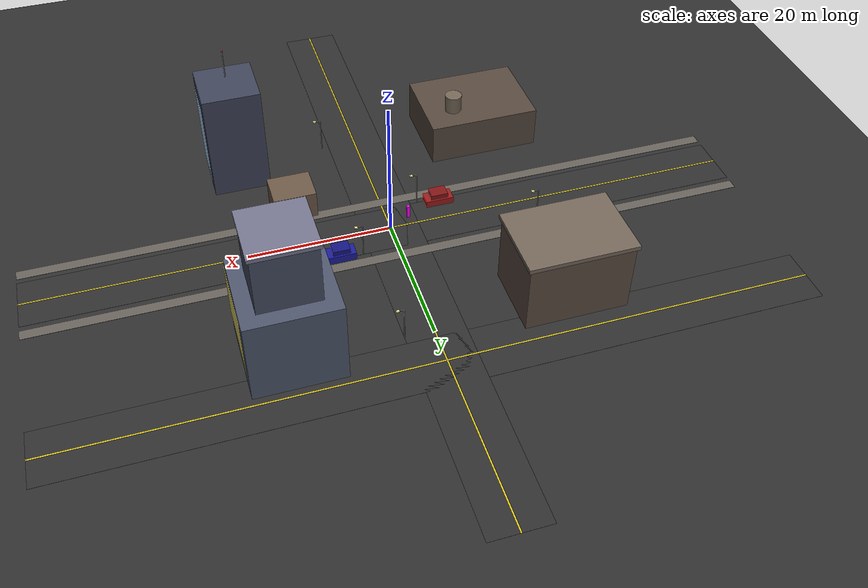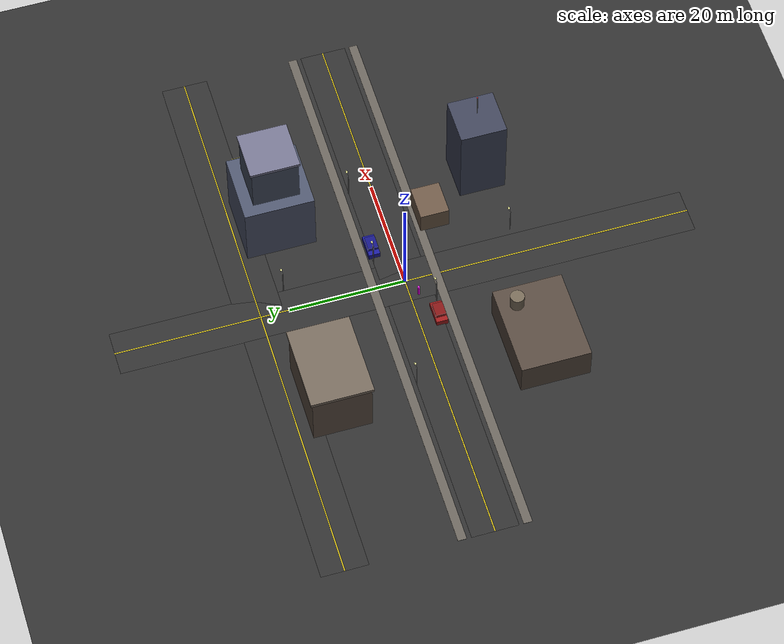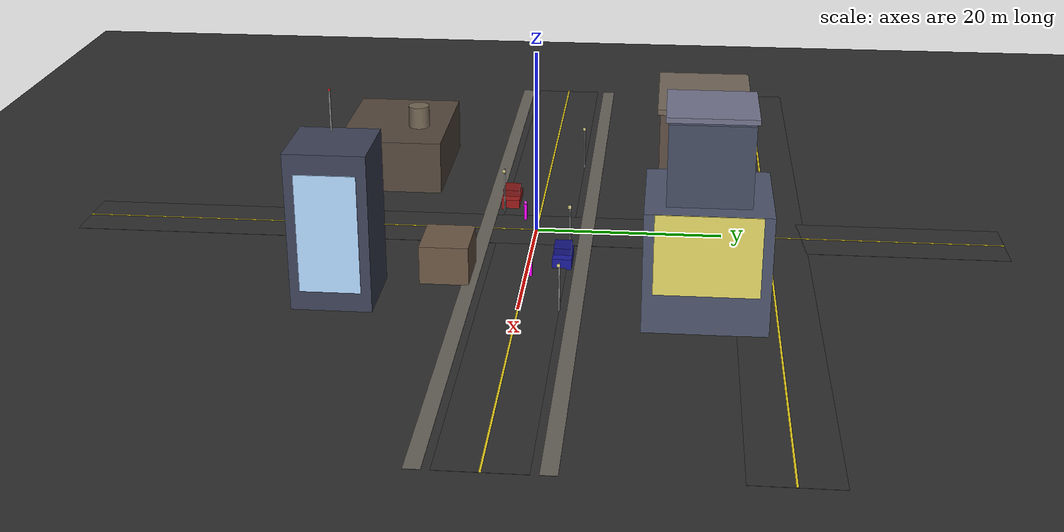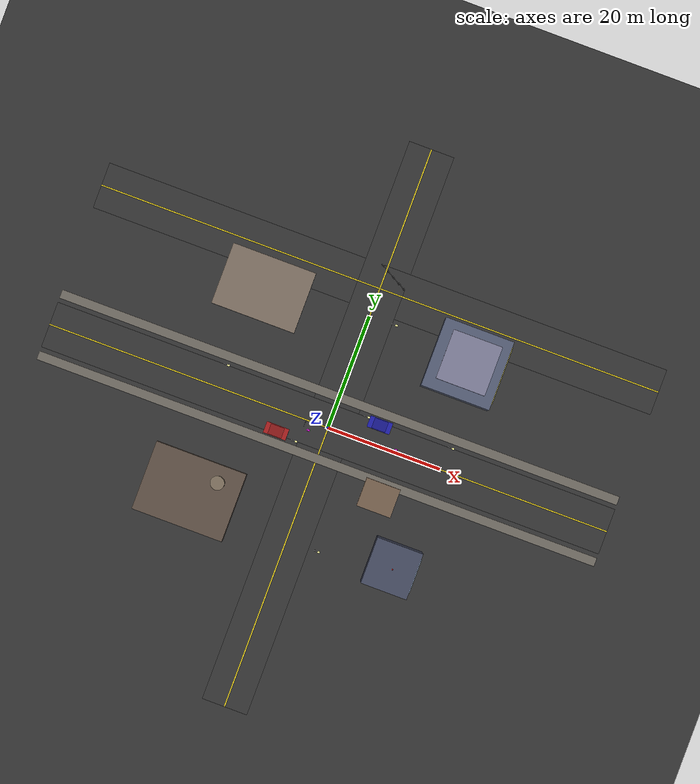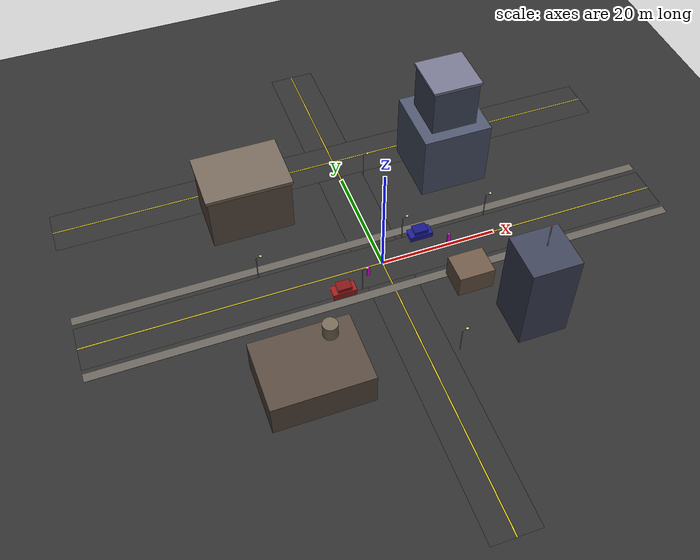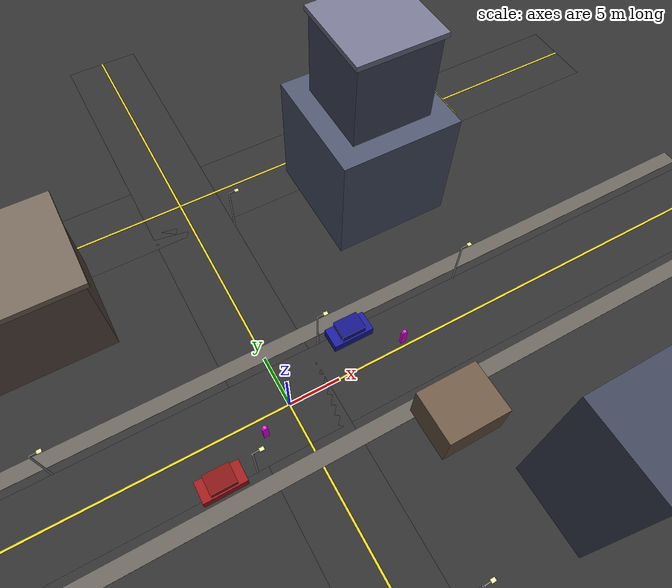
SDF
<?xml version="1.0" ?>
<sdf version="1.9">
  <world name="night_patrol_city">

    <physics name="default_physics" default="true" type="ode">
      <max_step_size>0.001</max_step_size>
      <real_time_factor>1.0</real_time_factor>
    </physics>

    <plugin filename="gz-sim-physics-system" name="gz::sim::systems::Physics"/>
    <plugin filename="gz-sim-scene-broadcaster-system" name="gz::sim::systems::SceneBroadcaster"/>
    <plugin filename="gz-sim-user-commands-system" name="gz::sim::systems::UserCommands"/>
    <plugin filename="gz-sim-sensors-system" name="gz::sim::systems::Sensors">
      <render_engine>ogre2</render_engine>
    </plugin>

    <scene>
      <ambient>0.03 0.03 0.07 1</ambient>
      <background>0.0 0.0 0.05 1</background>
      <shadows>true</shadows>
    </scene>

    <!-- ==================== WORLD-LEVEL LIGHTS ==================== -->

    <!-- Road 1 (horizontal) streetlights -->
    <light name="lamp_1" type="point">
      <pose>5 4 5.2 0 0 0</pose>
      <diffuse>1 0.88 0.5 1</diffuse>
      <specular>0.3 0.3 0.2 1</specular>
      <attenuation>
        <range>16</range>
        <constant>0.2</constant>
        <linear>0.04</linear>
        <quadratic>0.008</quadratic>
      </attenuation>
      <cast_shadows>false</cast_shadows>
    </light>

    <light name="lamp_2" type="point">
      <pose>-5 -4 5.2 0 0 0</pose>
      <diffuse>1 0.88 0.5 1</diffuse>
      <specular>0.3 0.3 0.2 1</specular>
      <attenuation>
        <range>16</range>
        <constant>0.2</constant>
        <linear>0.04</linear>
        <quadratic>0.008</quadratic>
      </attenuation>
      <cast_shadows>false</cast_shadows>
    </light>

    <!-- Road 2 (vertical) streetlights -->
    <light name="lamp_3" type="point">
      <pose>5 -20 5.2 0 0 0</pose>
      <diffuse>1 0.88 0.5 1</diffuse>
      <specular>0.3 0.3 0.2 1</specular>
      <attenuation>
        <range>16</range>
        <constant>0.2</constant>
        <linear>0.04</linear>
        <quadratic>0.008</quadratic>
      </attenuation>
      <cast_shadows>false</cast_shadows>
    </light>

    <!-- Road 3 (diagonal/second horizontal) streetlights -->
    <light name="lamp_4" type="point">
      <pose>-20 4 5.2 0 0 0</pose>
      <diffuse>1 0.88 0.5 1</diffuse>
      <specular>0.3 0.3 0.2 1</specular>
      <attenuation>
        <range>16</range>
        <constant>0.2</constant>
        <linear>0.04</linear>
        <quadratic>0.008</quadratic>
      </attenuation>
      <cast_shadows>false</cast_shadows>
    </light>

    <light name="lamp_5" type="point">
      <pose>20 4 5.2 0 0 0</pose>
      <diffuse>1 0.88 0.5 1</diffuse>
      <specular>0.3 0.3 0.2 1</specular>
      <attenuation>
        <range>16</range>
        <constant>0.2</constant>
        <linear>0.04</linear>
        <quadratic>0.008</quadratic>
      </attenuation>
      <cast_shadows>false</cast_shadows>
    </light>

    <light name="lamp_6" type="point">
      <pose>4 20 5.2 0 0 0</pose>
      <diffuse>1 0.88 0.5 1</diffuse>
      <specular>0.3 0.3 0.2 1</specular>
      <attenuation>
        <range>16</range>
        <constant>0.2</constant>
        <linear>0.04</linear>
        <quadratic>0.008</quadratic>
      </attenuation>
      <cast_shadows>false</cast_shadows>
    </light>

    <!-- ==================== GROUND ==================== -->
    <model name="ground_plane">
      <static>true</static>
      <link name="link">
        <collision name="collision">
          <geometry>
            <plane>
              <normal>0 0 1</normal>
              <size>200 200</size>
            </plane>
          </geometry>
        </collision>
        <visual name="visual">
          <geometry>
            <plane>
              <normal>0 0 1</normal>
              <size>200 200</size>
            </plane>
          </geometry>
          <material>
            <ambient>0.15 0.15 0.15 1</ambient>
            <diffuse>0.18 0.18 0.18 1</diffuse>
          </material>
        </visual>
      </link>
    </model>

    <!-- ==================== ROADS ==================== -->

    <!-- Road 1: Main horizontal -->
    <model name="road_h1">
      <static>true</static>
      <pose>0 0 0.01 0 0 0</pose>
      <link name="link">
        <visual name="visual">
          <geometry>
            <box><size>100 8 0.02</size></box>
          </geometry>
          <material>
            <ambient>0.12 0.12 0.12 1</ambient>
            <diffuse>0.18 0.18 0.18 1</diffuse>
          </material>
        </visual>
        <collision name="collision">
          <geometry>
            <box><size>100 8 0.02</size></box>
          </geometry>
        </collision>
      </link>
    </model>

    <!-- Road 1 centre line markings -->
    <model name="road_h1_line">
      <static>true</static>
      <pose>0 0 0.02 0 0 0</pose>
      <link name="link">
        <visual name="visual">
          <geometry>
            <box><size>100 0.2 0.01</size></box>
          </geometry>
          <material>
            <ambient>0.9 0.8 0.1 1</ambient>
            <diffuse>0.9 0.8 0.1 1</diffuse>
          </material>
        </visual>
      </link>
    </model>

    <!-- Road 2: Main vertical -->
    <model name="road_v1">
      <static>true</static>
      <pose>0 0 0.01 0 0 1.5708</pose>
      <link name="link">
        <visual name="visual">
          <geometry>
            <box><size>100 8 0.02</size></box>
          </geometry>
          <material>
            <ambient>0.12 0.12 0.12 1</ambient>
            <diffuse>0.18 0.18 0.18 1</diffuse>
          </material>
        </visual>
        <collision name="collision">
          <geometry>
            <box><size>100 8 0.02</size></box>
          </geometry>
        </collision>
      </link>
    </model>

    <!-- Road 2 centre line -->
    <model name="road_v1_line">
      <static>true</static>
      <pose>0 0 0.02 0 0 1.5708</pose>
      <link name="link">
        <visual name="visual">
          <geometry>
            <box><size>100 0.2 0.01</size></box>
          </geometry>
          <material>
            <ambient>0.9 0.8 0.1 1</ambient>
            <diffuse>0.9 0.8 0.1 1</diffuse>
          </material>
        </visual>
      </link>
    </model>

    <!-- Road 3: Second horizontal road above -->
    <model name="road_h2">
      <static>true</static>
      <pose>0 25 0.01 0 0 0</pose>
      <link name="link">
        <visual name="visual">
          <geometry>
            <box><size>100 8 0.02</size></box>
          </geometry>
          <material>
            <ambient>0.12 0.12 0.12 1</ambient>
            <diffuse>0.18 0.18 0.18 1</diffuse>
          </material>
        </visual>
        <collision name="collision">
          <geometry>
            <box><size>100 8 0.02</size></box>
          </geometry>
        </collision>
      </link>
    </model>

    <!-- Road 3 centre line -->
    <model name="road_h2_line">
      <static>true</static>
      <pose>0 25 0.02 0 0 0</pose>
      <link name="link">
        <visual name="visual">
          <geometry>
            <box><size>100 0.2 0.01</size></box>
          </geometry>
          <material>
            <ambient>0.9 0.8 0.1 1</ambient>
            <diffuse>0.9 0.8 0.1 1</diffuse>
          </material>
        </visual>
      </link>
    </model>

    <!-- Sidewalk strips alongside road_h1 -->
    <model name="sidewalk_h1_north">
      <static>true</static>
      <pose>0 5.5 0.015 0 0 0</pose>
      <link name="link">
        <visual name="visual">
          <geometry>
            <box><size>100 1.5 0.03</size></box>
          </geometry>
          <material>
            <ambient>0.35 0.33 0.30 1</ambient>
            <diffuse>0.40 0.38 0.35 1</diffuse>
          </material>
        </visual>
      </link>
    </model>

    <model name="sidewalk_h1_south">
      <static>true</static>
      <pose>0 -5.5 0.015 0 0 0</pose>
      <link name="link">
        <visual name="visual">
          <geometry>
            <box><size>100 1.5 0.03</size></box>
          </geometry>
          <material>
            <ambient>0.35 0.33 0.30 1</ambient>
            <diffuse>0.40 0.38 0.35 1</diffuse>
          </material>
        </visual>
      </link>
    </model>

    <!-- ==================== BUILDINGS ==================== -->

    <!-- Building 1: Tall office tower NE -->
    <model name="building_1_base">
      <static>true</static>
      <pose>18 18 6 0 0 0</pose>
      <link name="link">
        <visual name="visual">
          <geometry>
            <box><size>12 12 12</size></box>
          </geometry>
          <material>
            <ambient>0.25 0.28 0.35 1</ambient>
            <diffuse>0.30 0.33 0.42 1</diffuse>
            <specular>0.15 0.15 0.2 1</specular>
          </material>
        </visual>
        <collision name="collision">
          <geometry>
            <box><size>12 12 12</size></box>
          </geometry>
        </collision>
      </link>
    </model>

    <!-- Building 1 upper section (setback) -->
    <model name="building_1_upper">
      <static>true</static>
      <pose>18 18 16 0 0 0</pose>
      <link name="link">
        <visual name="visual">
          <geometry>
            <box><size>8 8 8</size></box>
          </geometry>
          <material>
            <ambient>0.22 0.25 0.32 1</ambient>
            <diffuse>0.27 0.30 0.38 1</diffuse>
          </material>
        </visual>
        <collision name="collision">
          <geometry>
            <box><size>8 8 8</size></box>
          </geometry>
        </collision>
      </link>
    </model>

    <!-- Building 1 roof accent -->
    <model name="building_1_roof">
      <static>true</static>
      <pose>18 18 20.5 0 0 0</pose>
      <link name="link">
        <visual name="visual">
          <geometry>
            <box><size>8.5 8.5 0.5</size></box>
          </geometry>
          <material>
            <ambient>0.4 0.4 0.5 1</ambient>
            <diffuse>0.45 0.45 0.55 1</diffuse>
          </material>
        </visual>
      </link>
    </model>

    <!-- Building 1 windows (emissive strip, warm yellow) -->
    <model name="building_1_windows">
      <static>true</static>
      <pose>24.1 18 8 0 0 0</pose>
      <link name="link">
        <visual name="visual">
          <geometry>
            <box><size>0.05 10 8</size></box>
          </geometry>
          <material>
            <ambient>0.9 0.85 0.4 1</ambient>
            <diffuse>0.9 0.85 0.4 1</diffuse>
            <emissive>0.6 0.55 0.1 1</emissive>
          </material>
        </visual>
      </link>
    </model>

    <!-- Building 2: Wide apartment block NW -->
    <model name="building_2_base">
      <static>true</static>
      <pose>-18 18 5 0 0 0</pose>
      <link name="link">
        <visual name="visual">
          <geometry>
            <box><size>14 10 10</size></box>
          </geometry>
          <material>
            <ambient>0.30 0.25 0.22 1</ambient>
            <diffuse>0.36 0.30 0.26 1</diffuse>
            <specular>0.1 0.08 0.07 1</specular>
          </material>
        </visual>
        <collision name="collision">
          <geometry>
            <box><size>14 10 10</size></box>
          </geometry>
        </collision>
      </link>
    </model>

    <!-- Building 2 roof ledge -->
    <model name="building_2_roof">
      <static>true</static>
      <pose>-18 18 10.3 0 0 0</pose>
      <link name="link">
        <visual name="visual">
          <geometry>
            <box><size>14.6 10.6 0.6</size></box>
          </geometry>
          <material>
            <ambient>0.4 0.35 0.3 1</ambient>
            <diffuse>0.45 0.40 0.35 1</diffuse>
          </material>
        </visual>
      </link>
    </model>

    <!-- Building 2 windows -->
    <model name="building_2_windows">
      <static>true</static>
      <pose>-11.1 18 5 0 0 0</pose>
      <link name="link">
        <visual name="visual">
          <geometry>
            <box><size>0.05 8 6</size></box>
          </geometry>
          <material>
            <ambient>0.9 0.85 0.4 1</ambient>
            <diffuse>0.9 0.85 0.4 1</diffuse>
            <emissive>0.5 0.45 0.05 1</emissive>
          </material>
        </visual>
      </link>
    </model>

    <!-- Building 3: Narrow tower SE -->
    <model name="building_3_base">
      <static>true</static>
      <pose>18 -18 8 0 0 0</pose>
      <link name="link">
        <visual name="visual">
          <geometry>
            <box><size>8 8 16</size></box>
          </geometry>
          <material>
            <ambient>0.20 0.22 0.28 1</ambient>
            <diffuse>0.24 0.26 0.34 1</diffuse>
            <specular>0.2 0.2 0.25 1</specular>
          </material>
        </visual>
        <collision name="collision">
          <geometry>
            <box><size>8 8 16</size></box>
          </geometry>
        </collision>
      </link>
    </model>

    <!-- Building 3 antenna -->
    <model name="building_3_antenna">
      <static>true</static>
      <pose>18 -18 19 0 0 0</pose>
      <link name="link">
        <visual name="visual">
          <geometry>
            <cylinder><radius>0.08</radius><length>4</length></cylinder>
          </geometry>
          <material>
            <ambient>0.5 0.5 0.5 1</ambient>
            <diffuse>0.6 0.6 0.6 1</diffuse>
          </material>
        </visual>
      </link>
    </model>

    <!-- Building 3 antenna red blink light -->
    <model name="building_3_beacon">
      <static>true</static>
      <pose>18 -18 21.1 0 0 0</pose>
      <link name="link">
        <visual name="visual">
          <geometry>
            <sphere><radius>0.12</radius></sphere>
          </geometry>
          <material>
            <ambient>1 0.1 0.1 1</ambient>
            <diffuse>1 0.1 0.1 1</diffuse>
            <emissive>0.9 0.0 0.0 1</emissive>
          </material>
        </visual>
      </link>
    </model>

    <!-- Building 3 windows -->
    <model name="building_3_windows">
      <static>true</static>
      <pose>22.1 -18 8 0 0 0</pose>
      <link name="link">
        <visual name="visual">
          <geometry>
            <box><size>0.05 6 12</size></box>
          </geometry>
          <material>
            <ambient>0.7 0.85 1.0 1</ambient>
            <diffuse>0.7 0.85 1.0 1</diffuse>
            <emissive>0.3 0.4 0.6 1</emissive>
          </material>
        </visual>
      </link>
    </model>

    <!-- Building 4: Low warehouse SW -->
    <model name="building_4_base">
      <static>true</static>
      <pose>-18 -18 3 0 0 0</pose>
      <link name="link">
        <visual name="visual">
          <geometry>
            <box><size>16 12 6</size></box>
          </geometry>
          <material>
            <ambient>0.28 0.24 0.20 1</ambient>
            <diffuse>0.33 0.28 0.24 1</diffuse>
          </material>
        </visual>
        <collision name="collision">
          <geometry>
            <box><size>16 12 6</size></box>
          </geometry>
        </collision>
      </link>
    </model>

    <!-- Building 4 roof water tower -->
    <model name="building_4_watertower">
      <static>true</static>
      <pose>-14 -15 8 0 0 0</pose>
      <link name="link">
        <visual name="visual">
          <geometry>
            <cylinder><radius>1.2</radius><length>2.5</length></cylinder>
          </geometry>
          <material>
            <ambient>0.4 0.35 0.28 1</ambient>
            <diffuse>0.45 0.40 0.33 1</diffuse>
          </material>
        </visual>
      </link>
    </model>

    <!-- Building 5: Corner shop (small, near road) -->
    <model name="building_5">
      <static>true</static>
      <pose>12 -8 2 0 0 0</pose>
      <link name="link">
        <visual name="visual">
          <geometry>
            <box><size>6 5 4</size></box>
          </geometry>
          <material>
            <ambient>0.35 0.28 0.22 1</ambient>
            <diffuse>0.42 0.34 0.27 1</diffuse>
          </material>
        </visual>
        <collision name="collision">
          <geometry>
            <box><size>6 5 4</size></box>
          </geometry>
        </collision>
      </link>
    </model>

    <!-- Building 5 shop sign (emissive) -->
    <model name="building_5_sign">
      <static>true</static>
      <pose>12 -5.55 3.5 0 0 0</pose>
      <link name="link">
        <visual name="visual">
          <geometry>
            <box><size>4 0.05 0.6</size></box>
          </geometry>
          <material>
            <ambient>0.2 0.8 0.4 1</ambient>
            <diffuse>0.2 0.8 0.4 1</diffuse>
            <emissive>0.1 0.5 0.2 1</emissive>
          </material>
        </visual>
      </link>
    </model>

    <!-- ==================== STREETLIGHT POLES ==================== -->

    <!-- Pole 1 -->
    <model name="streetlight_1">
      <static>true</static>
      <pose>5 4 0 0 0 0</pose>
      <link name="pole">
        <pose>0 0 2.5 0 0 0</pose>
        <visual name="visual">
          <geometry>
            <cylinder><radius>0.08</radius><length>5</length></cylinder>
          </geometry>
          <material>
            <ambient>0.45 0.45 0.45 1</ambient>
            <diffuse>0.55 0.55 0.55 1</diffuse>
          </material>
        </visual>
        <collision name="collision">
          <geometry>
            <cylinder><radius>0.08</radius><length>5</length></cylinder>
          </geometry>
        </collision>
      </link>
      <link name="arm">
        <pose>0.4 0 5.1 0 0 0</pose>
        <visual name="visual">
          <geometry>
            <box><size>0.8 0.08 0.08</size></box>
          </geometry>
          <material>
            <ambient>0.45 0.45 0.45 1</ambient>
            <diffuse>0.55 0.55 0.55 1</diffuse>
          </material>
        </visual>
      </link>
      <link name="lamp_head">
        <pose>0.8 0 5.1 0 0 0</pose>
        <visual name="visual">
          <geometry>
            <box><size>0.4 0.3 0.15</size></box>
          </geometry>
          <material>
            <ambient>1 0.95 0.6 1</ambient>
            <diffuse>1 0.95 0.6 1</diffuse>
            <emissive>1 0.9 0.3 1</emissive>
          </material>
        </visual>
      </link>
    </model>

    <!-- Pole 2 -->
    <model name="streetlight_2">
      <static>true</static>
      <pose>-5 -4 0 0 0 0</pose>
      <link name="pole">
        <pose>0 0 2.5 0 0 0</pose>
        <visual name="visual">
          <geometry>
            <cylinder><radius>0.08</radius><length>5</length></cylinder>
          </geometry>
          <material>
            <ambient>0.45 0.45 0.45 1</ambient>
            <diffuse>0.55 0.55 0.55 1</diffuse>
          </material>
        </visual>
        <collision name="collision">
          <geometry>
            <cylinder><radius>0.08</radius><length>5</length></cylinder>
          </geometry>
        </collision>
      </link>
      <link name="arm">
        <pose>0.4 0 5.1 0 0 0</pose>
        <visual name="visual">
          <geometry>
            <box><size>0.8 0.08 0.08</size></box>
          </geometry>
          <material>
            <ambient>0.45 0.45 0.45 1</ambient>
            <diffuse>0.55 0.55 0.55 1</diffuse>
          </material>
        </visual>
      </link>
      <link name="lamp_head">
        <pose>0.8 0 5.1 0 0 0</pose>
        <visual name="visual">
          <geometry>
            <box><size>0.4 0.3 0.15</size></box>
          </geometry>
          <material>
            <ambient>1 0.95 0.6 1</ambient>
            <diffuse>1 0.95 0.6 1</diffuse>
            <emissive>1 0.9 0.3 1</emissive>
          </material>
        </visual>
      </link>
    </model>

    <!-- Pole 3 -->
    <model name="streetlight_3">
      <static>true</static>
      <pose>5 -20 0 0 0 0</pose>
      <link name="pole">
        <pose>0 0 2.5 0 0 0</pose>
        <visual name="visual">
          <geometry>
            <cylinder><radius>0.08</radius><length>5</length></cylinder>
          </geometry>
          <material>
            <ambient>0.45 0.45 0.45 1</ambient>
            <diffuse>0.55 0.55 0.55 1</diffuse>
          </material>
        </visual>
        <collision name="collision">
          <geometry>
            <cylinder><radius>0.08</radius><length>5</length></cylinder>
          </geometry>
        </collision>
      </link>
      <link name="arm">
        <pose>0.4 0 5.1 0 0 0</pose>
        <visual name="visual">
          <geometry>
            <box><size>0.8 0.08 0.08</size></box>
          </geometry>
          <material>
            <ambient>0.45 0.45 0.45 1</ambient>
            <diffuse>0.55 0.55 0.55 1</diffuse>
          </material>
        </visual>
      </link>
      <link name="lamp_head">
        <pose>0.8 0 5.1 0 0 0</pose>
        <visual name="visual">
          <geometry>
            <box><size>0.4 0.3 0.15</size></box>
          </geometry>
          <material>
            <ambient>1 0.95 0.6 1</ambient>
            <diffuse>1 0.95 0.6 1</diffuse>
            <emissive>1 0.9 0.3 1</emissive>
          </material>
        </visual>
      </link>
    </model>

    <!-- Pole 4 (road 3 left) -->
    <model name="streetlight_4">
      <static>true</static>
      <pose>-20 4 0 0 0 0</pose>
      <link name="pole">
        <pose>0 0 2.5 0 0 0</pose>
        <visual name="visual">
          <geometry>
            <cylinder><radius>0.08</radius><length>5</length></cylinder>
          </geometry>
          <material>
            <ambient>0.45 0.45 0.45 1</ambient>
            <diffuse>0.55 0.55 0.55 1</diffuse>
          </material>
        </visual>
        <collision name="collision">
          <geometry>
            <cylinder><radius>0.08</radius><length>5</length></cylinder>
          </geometry>
        </collision>
      </link>
      <link name="arm">
        <pose>0.4 0 5.1 0 0 0</pose>
        <visual name="visual">
          <geometry>
            <box><size>0.8 0.08 0.08</size></box>
          </geometry>
          <material>
            <ambient>0.45 0.45 0.45 1</ambient>
            <diffuse>0.55 0.55 0.55 1</diffuse>
          </material>
        </visual>
      </link>
      <link name="lamp_head">
        <pose>0.8 0 5.1 0 0 0</pose>
        <visual name="visual">
          <geometry>
            <box><size>0.4 0.3 0.15</size></box>
          </geometry>
          <material>
            <ambient>1 0.95 0.6 1</ambient>
            <diffuse>1 0.95 0.6 1</diffuse>
            <emissive>1 0.9 0.3 1</emissive>
          </material>
        </visual>
      </link>
    </model>

    <!-- Pole 5 (road 3 right) -->
    <model name="streetlight_5">
      <static>true</static>
      <pose>20 4 0 0 0 0</pose>
      <link name="pole">
        <pose>0 0 2.5 0 0 0</pose>
        <visual name="visual">
          <geometry>
            <cylinder><radius>0.08</radius><length>5</length></cylinder>
          </geometry>
          <material>
            <ambient>0.45 0.45 0.45 1</ambient>
            <diffuse>0.55 0.55 0.55 1</diffuse>
          </material>
        </visual>
        <collision name="collision">
          <geometry>
            <cylinder><radius>0.08</radius><length>5</length></cylinder>
          </geometry>
        </collision>
      </link>
      <link name="arm">
        <pose>0.4 0 5.1 0 0 0</pose>
        <visual name="visual">
          <geometry>
            <box><size>0.8 0.08 0.08</size></box>
          </geometry>
          <material>
            <ambient>0.45 0.45 0.45 1</ambient>
            <diffuse>0.55 0.55 0.55 1</diffuse>
          </material>
        </visual>
      </link>
      <link name="lamp_head">
        <pose>0.8 0 5.1 0 0 0</pose>
        <visual name="visual">
          <geometry>
            <box><size>0.4 0.3 0.15</size></box>
          </geometry>
          <material>
            <ambient>1 0.95 0.6 1</ambient>
            <diffuse>1 0.95 0.6 1</diffuse>
            <emissive>1 0.9 0.3 1</emissive>
          </material>
        </visual>
      </link>
    </model>

    <!-- Pole 6 (upper road) -->
    <model name="streetlight_6">
      <static>true</static>
      <pose>4 20 0 0 0 0</pose>
      <link name="pole">
        <pose>0 0 2.5 0 0 0</pose>
        <visual name="visual">
          <geometry>
            <cylinder><radius>0.08</radius><length>5</length></cylinder>
          </geometry>
          <material>
            <ambient>0.45 0.45 0.45 1</ambient>
            <diffuse>0.55 0.55 0.55 1</diffuse>
          </material>
        </visual>
        <collision name="collision">
          <geometry>
            <cylinder><radius>0.08</radius><length>5</length></cylinder>
          </geometry>
        </collision>
      </link>
      <link name="arm">
        <pose>0.4 0 5.1 0 0 0</pose>
        <visual name="visual">
          <geometry>
            <box><size>0.8 0.08 0.08</size></box>
          </geometry>
          <material>
            <ambient>0.45 0.45 0.45 1</ambient>
            <diffuse>0.55 0.55 0.55 1</diffuse>
          </material>
        </visual>
      </link>
      <link name="lamp_head">
        <pose>0.8 0 5.1 0 0 0</pose>
        <visual name="visual">
          <geometry>
            <box><size>0.4 0.3 0.15</size></box>
          </geometry>
          <material>
            <ambient>1 0.95 0.6 1</ambient>
            <diffuse>1 0.95 0.6 1</diffuse>
            <emissive>1 0.9 0.3 1</emissive>
          </material>
        </visual>
      </link>
    </model>

    <!-- ==================== PARKED CARS ==================== -->

    <model name="parked_car_1">
      <static>true</static>
      <pose>8 3.5 0.4 0 0 0</pose>
      <link name="body">
        <visual name="visual">
          <geometry>
            <box><size>4 2 1.2</size></box>
          </geometry>
          <material>
            <ambient>0.1 0.1 0.5 1</ambient>
            <diffuse>0.1 0.1 0.6 1</diffuse>
          </material>
        </visual>
        <collision name="collision">
          <geometry>
            <box><size>4 2 1.2</size></box>
          </geometry>
        </collision>
      </link>
      <link name="roof">
        <pose>0 0 1.1 0 0 0</pose>
        <visual name="visual">
          <geometry>
            <box><size>2.4 1.8 0.7</size></box>
          </geometry>
          <material>
            <ambient>0.08 0.08 0.45 1</ambient>
            <diffuse>0.08 0.08 0.5 1</diffuse>
          </material>
        </visual>
      </link>
    </model>

    <model name="parked_car_2">
      <static>true</static>
      <pose>-8 -3.5 0.4 0 0 0</pose>
      <link name="body">
        <visual name="visual">
          <geometry>
            <box><size>4 2 1.2</size></box>
          </geometry>
          <material>
            <ambient>0.5 0.1 0.1 1</ambient>
            <diffuse>0.6 0.1 0.1 1</diffuse>
          </material>
        </visual>
        <collision name="collision">
          <geometry>
            <box><size>4 2 1.2</size></box>
          </geometry>
        </collision>
      </link>
      <link name="roof">
        <pose>0 0 1.1 0 0 0</pose>
        <visual name="visual">
          <geometry>
            <box><size>2.4 1.8 0.7</size></box>
          </geometry>
          <material>
            <ambient>0.45 0.08 0.08 1</ambient>
            <diffuse>0.5 0.08 0.08 1</diffuse>
          </material>
        </visual>
      </link>
    </model>

    <!-- Parked car on new road -->
    <model name="parked_car_3">
      <static>true</static>
      <pose>-15 21.5 0.4 0 0 0</pose>
      <link name="body">
        <visual name="visual">
          <geometry>
            <box><size>4 2 1.2</size></box>
          </geometry>
          <material>
            <ambient>0.1 0.4 0.1 1</ambient>
            <diffuse>0.1 0.5 0.1 1</diffuse>
          </material>
        </visual>
        <collision name="collision">
          <geometry>
            <box><size>4 2 1.2</size></box>
          </geometry>
        </collision>
      </link>
      <link name="roof">
        <pose>0 0 1.1 0 0 0</pose>
        <visual name="visual">
          <geometry>
            <box><size>2.4 1.8 0.7</size></box>
          </geometry>
          <material>
            <ambient>0.08 0.35 0.08 1</ambient>
            <diffuse>0.08 0.4 0.08 1</diffuse>
          </material>
        </visual>
      </link>
    </model>

    <!-- ==================== HUMAN MANNEQUIN ==================== -->
    <model name="person_1">
      <static>true</static>
      <pose>12 0.5 0.9 0 0 0</pose>
      <link name="body">
        <visual name="visual">
          <geometry>
            <box><size>0.5 0.3 1.8</size></box>
          </geometry>
          <material>
            <ambient>1 0 1 1</ambient>
            <diffuse>1 0 1 1</diffuse>
          </material>
        </visual>
        <collision name="collision">
          <geometry>
            <box><size>0.5 0.3 1.8</size></box>
          </geometry>
        </collision>
      </link>
      <link name="head">
        <pose>0 0 1.05 0 0 0</pose>
        <visual name="visual">
          <geometry>
            <sphere><radius>0.18</radius></sphere>
          </geometry>
          <material>
            <ambient>1 0.2 1 1</ambient>
            <diffuse>1 0.2 1 1</diffuse>

          </material>
        </visual>
      </link>
    </model>

    <!-- PERSON 2 (SAFE ZONE) -->
    <model name="person_2">
      <static>true</static>
      <pose>-3 -1.5 0.9 0 0 0</pose>
      <link name="body">
        <visual name="visual">
          <geometry>
            <box><size>0.5 0.3 1.8</size></box>
          </geometry>
          <material>
            <ambient>1 0 1 1</ambient>
            <diffuse>1 0 1 1</diffuse>
          </material>
        </visual>
        <collision name="collision">
          <geometry>
            <box><size>0.5 0.3 1.8</size></box>
          </geometry>
        </collision>
      </link>
      <link name="head">
        <pose>0 0 1.05 0 0 0</pose>
        <visual name="visual">
          <geometry>
            <sphere><radius>0.18</radius></sphere>
          </geometry>
          <material>
            <ambient>1 0.2 1 1</ambient>
            <diffuse>1 0.2 1 1</diffuse>
          </material>
        </visual>
      </link>
    </model>

  </world>
</sdf>
